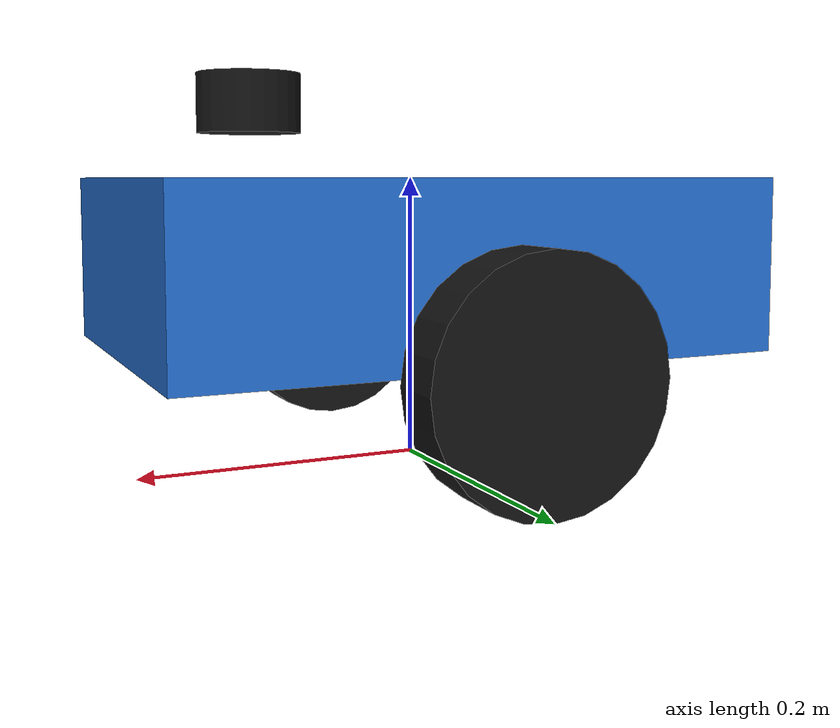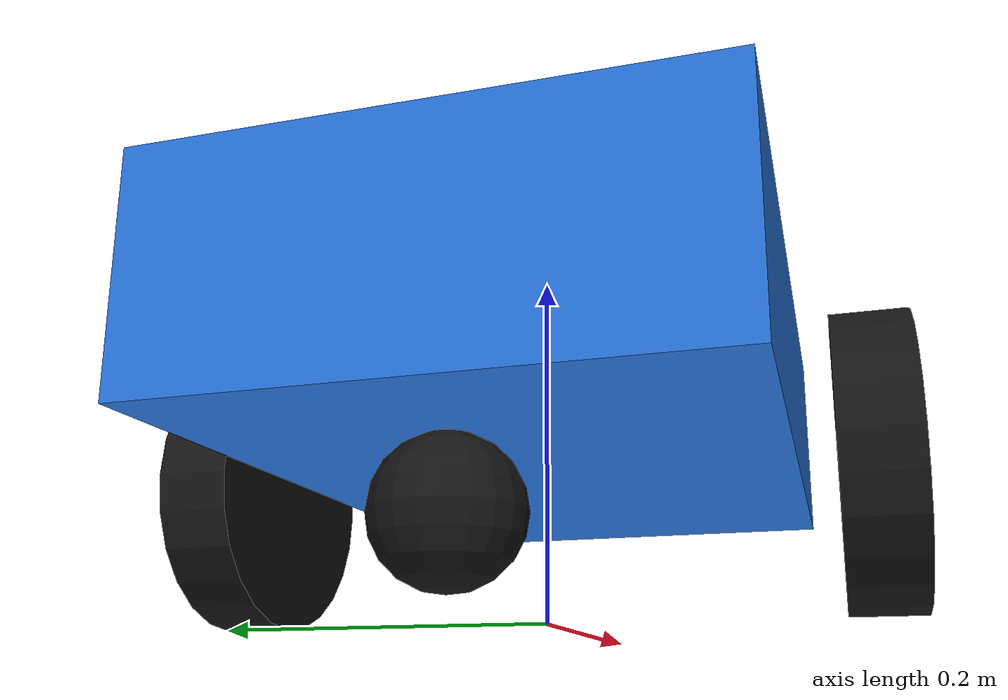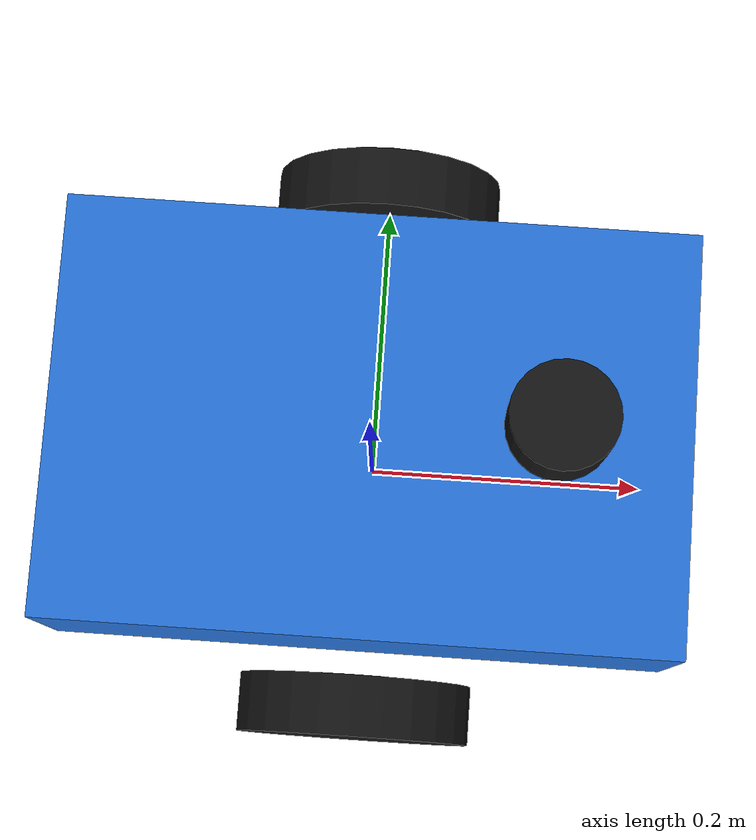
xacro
<?xml version="1.0"?>
<robot name="control_lab_mobile" xmlns:xacro="http://www.ros.org/wiki/xacro">
  <xacro:property name="wheel_radius" value="0.08"/>
  <xacro:property name="wheel_width" value="0.04"/>
  <xacro:property name="wheel_mass" value="0.35"/>
  <material name="blue"><color rgba="0.15 0.45 0.85 1"/></material>
  <material name="black"><color rgba="0.08 0.08 0.08 1"/></material>

  <link name="base_footprint"/>
  <joint name="base_footprint_joint" type="fixed">
    <parent link="base_footprint"/><child link="base_link"/><origin xyz="0 0 0.14"/>
  </joint>
  <link name="base_link">
    <visual><geometry><box size="0.42 0.28 0.12"/></geometry><material name="blue"/></visual>
    <collision><geometry><box size="0.42 0.28 0.12"/></geometry></collision>
    <inertial>
      <!-- A rear-mounted battery places the COM inside the wheel/caster
           support triangle; visual and collision geometry stay centered. -->
      <origin xyz="-0.03 0 0"/>
      <mass value="7"/>
      <inertia ixx="0.0541333" ixy="0" ixz="0" iyy="0.1113" iyz="0" izz="0.1486333"/>
    </inertial>
  </link>
  <xacro:macro name="wheel" params="side y">
    <joint name="${side}_wheel_joint" type="continuous">
      <parent link="base_link"/><child link="${side}_wheel"/>
      <origin xyz="0 ${y} -0.06"/><axis xyz="0 1 0"/>
      <limit effort="15" velocity="12"/>
      <dynamics damping="0.02" friction="0"/>
    </joint>
    <link name="${side}_wheel">
      <visual>
        <origin rpy="${pi/2} 0 0"/>
        <geometry><cylinder radius="${wheel_radius}" length="${wheel_width}"/></geometry>
        <material name="black"/>
      </visual>
      <collision><origin rpy="${pi/2} 0 0"/><geometry><cylinder radius="${wheel_radius}" length="${wheel_width}"/></geometry></collision>
      <inertial>
        <mass value="${wheel_mass}"/>
        <inertia ixx="${wheel_mass*(3*wheel_radius**2+wheel_width**2)/12}" ixy="0" ixz="0"
                 iyy="${wheel_mass*wheel_radius**2/2}" iyz="0"
                 izz="${wheel_mass*(3*wheel_radius**2+wheel_width**2)/12}"/>
      </inertial>
    </link>
    <transmission name="${side}_wheel_transmission">
      <type>transmission_interface/SimpleTransmission</type>
      <joint name="${side}_wheel_joint"><hardwareInterface>hardware_interface/VelocityJointInterface</hardwareInterface></joint>
      <actuator name="${side}_wheel_motor">
        <hardwareInterface>hardware_interface/VelocityJointInterface</hardwareInterface>
        <mechanicalReduction>1</mechanicalReduction>
      </actuator>
    </transmission>
    <gazebo reference="${side}_wheel">
      <material>Gazebo/Black</material><mu1>1.0</mu1><mu2>1.0</mu2>
      <kp>1000000.0</kp><kd>500.0</kd><minDepth>0.0</minDepth>
    </gazebo>
  </xacro:macro>
  <xacro:wheel side="left" y="0.18"/>
  <xacro:wheel side="right" y="-0.18"/>

  <!-- One rear caster and two driven wheels form a three-point support. -->
  <xacro:macro name="caster" params="name x">
    <joint name="${name}_joint" type="fixed">
      <parent link="base_link"/><child link="${name}"/><origin xyz="${x} 0 -0.105"/>
    </joint>
    <link name="${name}">
      <visual><geometry><sphere radius="0.035"/></geometry><material name="black"/></visual>
      <collision><geometry><sphere radius="0.035"/></geometry></collision>
      <inertial><mass value="0.05"/><inertia ixx="0.0000245" ixy="0" ixz="0" iyy="0.0000245" iyz="0" izz="0.0000245"/></inertial>
    </link>
    <!-- A compliant caster keeps normal load on the driven wheels.
         Positive wheel minDepth can otherwise unload the tires. -->
    <gazebo reference="${name}">
      <mu1>0.0</mu1><mu2>0.0</mu2><material>Gazebo/Black</material>
      <kp>1000000.0</kp><kd>500.0</kd><minDepth>0.0</minDepth>
    </gazebo>
  </xacro:macro>
  <xacro:caster name="rear_caster" x="-0.16"/>

  <joint name="laser_joint" type="fixed">
    <parent link="base_link"/><child link="laser"/><origin xyz="0.12 0 0.11"/>
  </joint>
  <link name="laser">
    <visual><geometry><cylinder radius="0.035" length="0.04"/></geometry><material name="black"/></visual>
    <collision><geometry><cylinder radius="0.035" length="0.04"/></geometry></collision>
    <inertial><mass value="0.1"/><inertia ixx="0.000044" ixy="0" ixz="0" iyy="0.000044" iyz="0" izz="0.00006125"/></inertial>
  </link>
  <gazebo reference="laser">
    <material>Gazebo/Black</material>
    <sensor name="planar_laser" type="ray">
      <always_on>true</always_on><update_rate>10</update_rate><visualize>false</visualize>
      <ray>
        <scan><horizontal><samples>360</samples><resolution>1</resolution><min_angle>-${pi}</min_angle><max_angle>${pi}</max_angle></horizontal></scan>
        <range><min>0.12</min><max>8.0</max><resolution>0.01</resolution></range>
        <noise><type>gaussian</type><mean>0</mean><stddev>0.005</stddev></noise>
      </ray>
      <plugin name="laser_ros" filename="libgazebo_ros_laser.so">
        <robotNamespace>/</robotNamespace><topicName>/scan</topicName><frameName>laser</frameName>
      </plugin>
    </sensor>
  </gazebo>

  <joint name="imu_joint" type="fixed">
    <parent link="base_link"/><child link="imu_link"/>
  </joint>
  <link name="imu_link">
    <inertial><mass value="0.01"/><inertia ixx="0.000001" ixy="0" ixz="0" iyy="0.000001" iyz="0" izz="0.000001"/></inertial>
  </link>
  <gazebo reference="imu_link">
    <sensor name="imu" type="imu">
      <always_on>true</always_on><update_rate>50</update_rate>
      <plugin name="imu_ros" filename="libgazebo_ros_imu_sensor.so">
        <robotNamespace>/</robotNamespace><topicName>/imu/data</topicName><frameName>imu_link</frameName>
        <updateRateHZ>50</updateRateHZ><gaussianNoise>0.002</gaussianNoise>
        <xyzOffset>0 0 0</xyzOffset><rpyOffset>0 0 0</rpyOffset>
        <initialOrientationAsReference>false</initialOrientationAsReference>
      </plugin>
    </sensor>
  </gazebo>
  <gazebo reference="base_link"><material>Gazebo/Blue</material></gazebo>
  <gazebo>
    <plugin name="gazebo_ros_control" filename="libgazebo_ros_control.so">
      <robotNamespace>/</robotNamespace><robotParam>/robot_description</robotParam>
      <robotSimType>gazebo_ros_control/DefaultRobotHWSim</robotSimType>
      <controlPeriod>0.001</controlPeriod>
    </plugin>
  </gazebo>
</robot>
